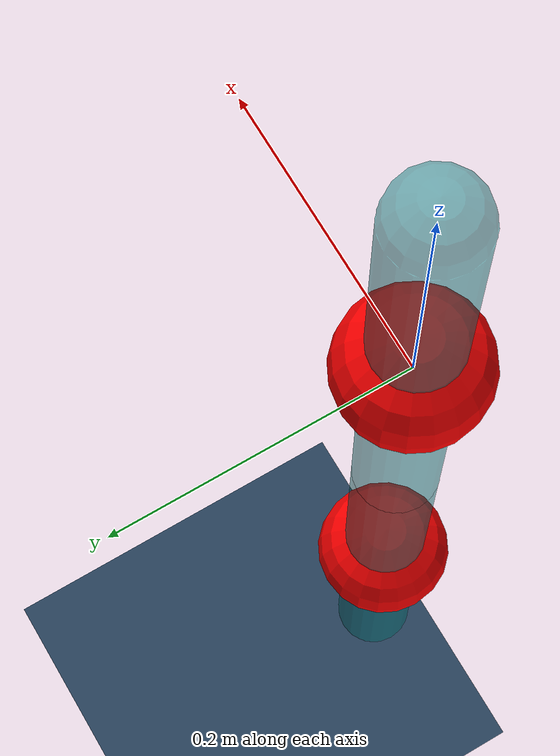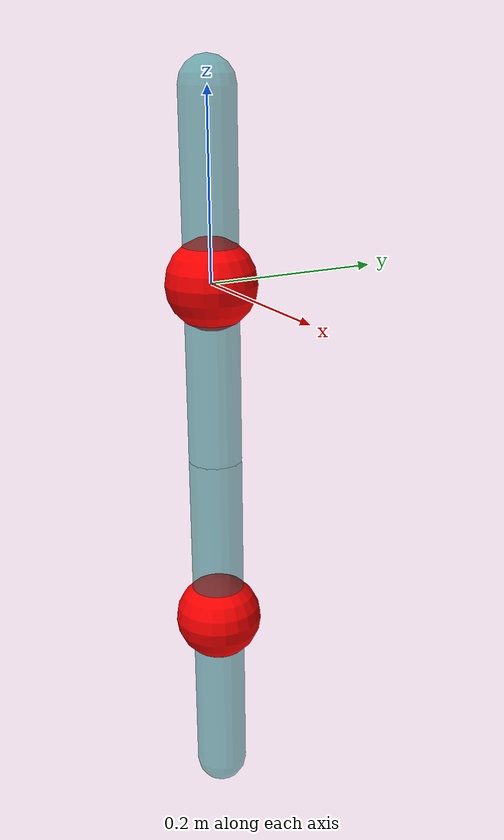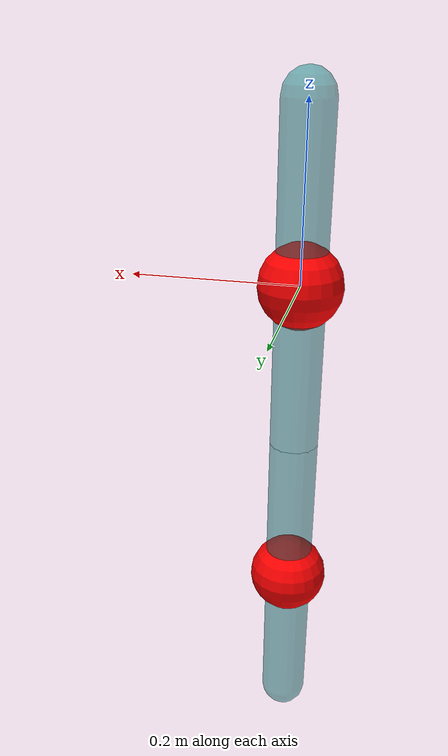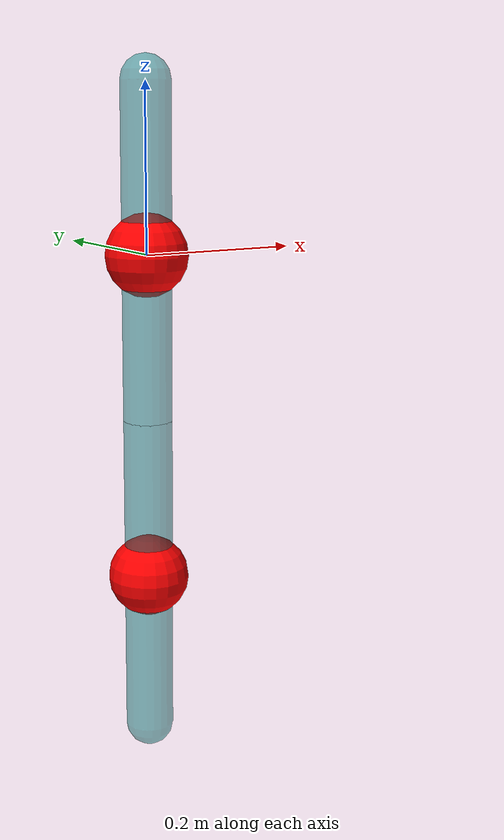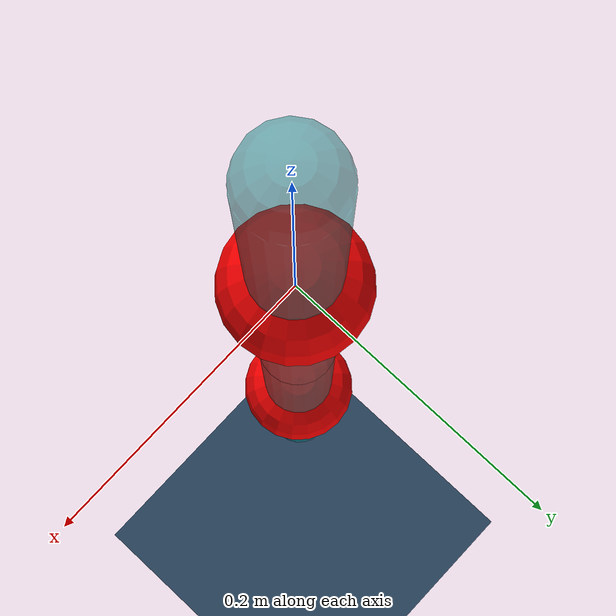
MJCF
<mujoco>
  <asset>
    <texture name="grid" type="2d" builtin="checker" rgb1=".1 .2 .3"
     rgb2=".2 .3 .4" width="300" height="300"/>
    <material name="grid" texture="grid" texrepeat="8 8" reflectance=".2"/>
  </asset>

  <option timestep=".001" integrator="RK4">
    <flag energy="enable" contact="disable"/>
  </option>

  <default>
    <joint type="ball"/>
    <geom type="capsule" size=".03"/>
  </default>

  <worldbody>
    <light pos="0 -.4 1"/>
    <camera name="fixed" pos="0 -1 0" xyaxes="1 0 0 0 0 1"/>
    <geom name="floor" type="plane" pos="0 0 -1" size="5 5 .1" material="grid"/>
    <body name="link_1" pos="0 0 .2">
      <joint name='perturbation'/>
      <geom fromto="0 0 0 0 0 -.4" rgba="0 0.5 0.5 0.5"/>
      <site name="IMU1" pos="0 0 -.2" size=".05" rgba="1 0 0 1"/>
      <body name="link_2" pos="0 0 -.4">
        <joint name='joint'/>
        <geom fromto="0 0 0 0 0 -.4" rgba="0 0.5 0.5 0.5"/>
        <site name="IMU2" pos="0 0 -.2" size=".05" rgba="1 0 0 1"/>
      </body>
    </body>
  </worldbody>

<actuator>
    <position name="basis1"  gear="1 0 0"  joint="perturbation"/>
		<position name="basis2"  gear="0 1 0"  joint="perturbation"/>
		<position name="basis3"  gear="0 0 1"  joint="perturbation"/>
		<position name="ball1"  gear="1 0 0"  joint="joint"/>
		<position name="ball2"  gear="0 1 0"  joint="joint"/>
		<position name="ball3"  gear="0 0 1"  joint="joint"/>
</actuator>

  <sensor>
    <accelerometer name="acc_1" site="IMU1"/>
    <accelerometer name="acc_2" site="IMU2"/>
    <gyro name="gyro_1" site="IMU1"/>
    <gyro name="gyro_2" site="IMU2"/>
    <magnetometer name="mag_1" site="IMU1"/>
    <magnetometer name="mag_2" site="IMU2"/>
  </sensor>

</mujoco>
